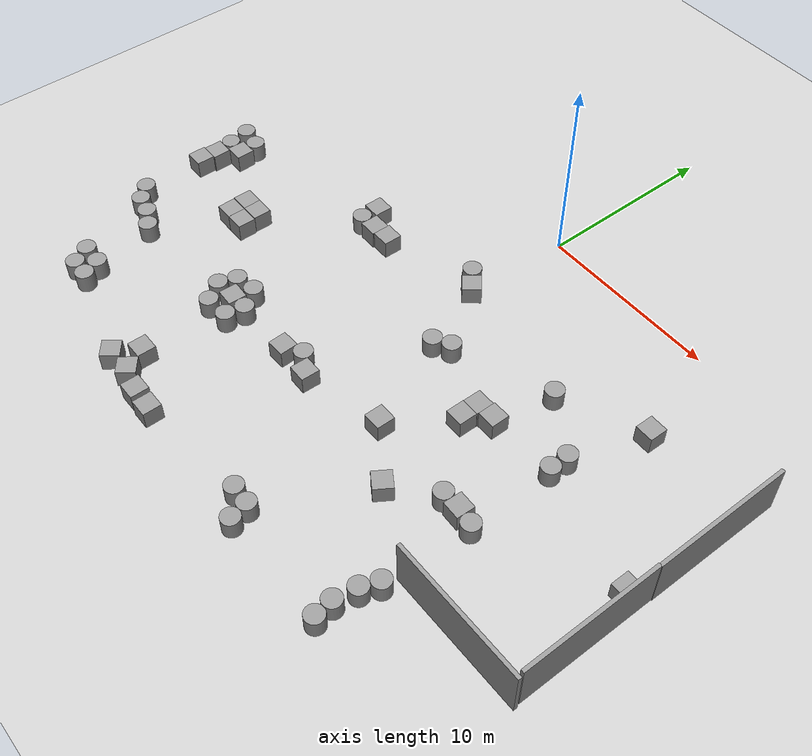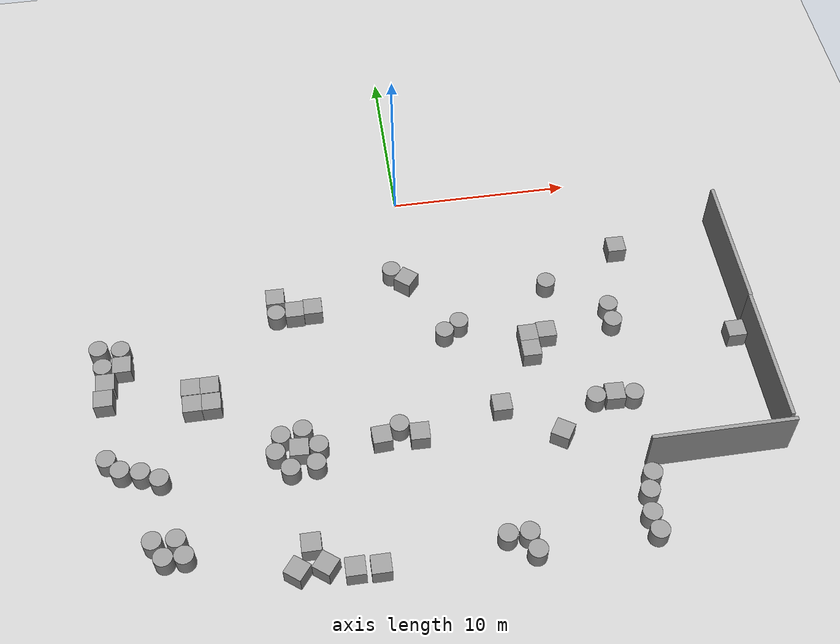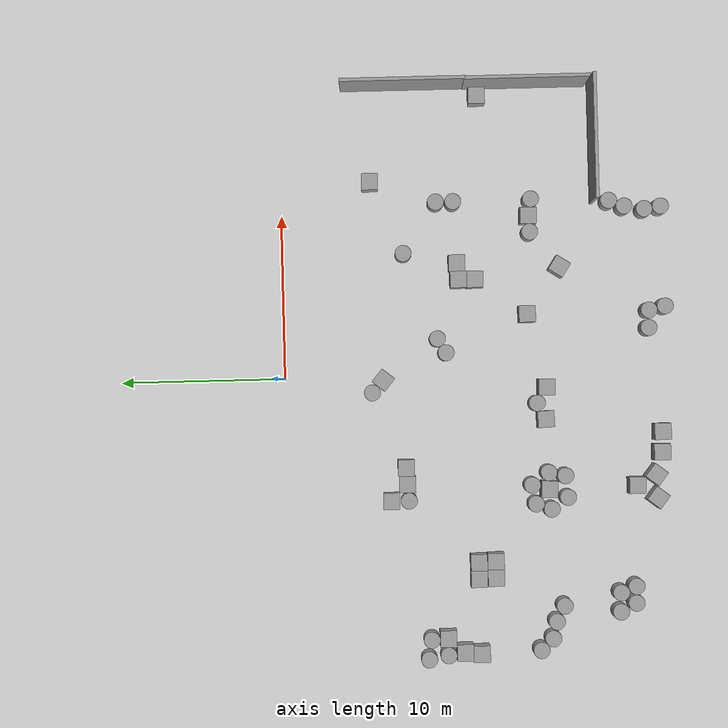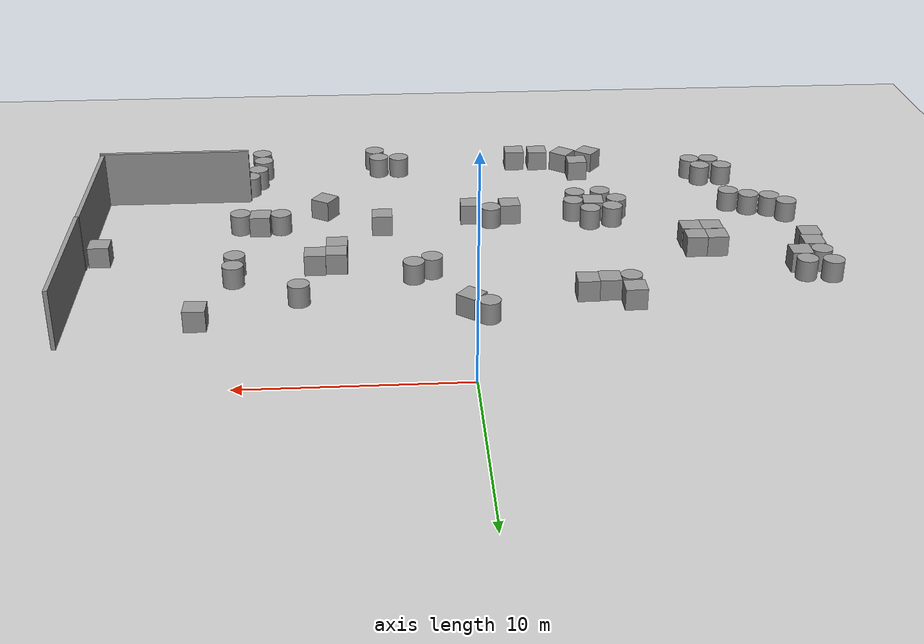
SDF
<sdf version="1.6">
 <world name="default">
  <model name="ground_plane">
   <static>1</static>
   <link name="link">
    <collision name="collision">
     <geometry><plane><normal>0 0 1</normal><size>100 100</size></plane></geometry>
     <surface><friction><ode><mu>100</mu><mu2>50</mu2></ode></friction></surface>
    </collision>
    <visual name="visual">
     <cast_shadows>0</cast_shadows>
     <geometry><plane><normal>0 0 1</normal><size>100 100</size></plane></geometry>
     <material>
      <script><uri>file://media/materials/scripts/gazebo.material</uri><name>Gazebo/Grey</name></script>
     </material>
    </visual>
   </link>
  </model>
  <model name="unit_box_5">
   <pose>-6.51998 -7.31504 0.5 0 0 -0.011529</pose>
   <link name="link">
    <inertial>
     <mass>1</mass>
     <inertia>
      <ixx>0.166667</ixx>
      <ixy>0</ixy>
      <ixz>0</ixz>
      <iyy>0.166667</iyy>
      <iyz>0</iyz>
      <izz>0.166667</izz>
     </inertia>
    </inertial>
    <collision name="collision"><geometry><box><size>1 1 1</size></box></geometry></collision>
    <visual name="visual">
     <geometry><box><size>1 1 1</size></box></geometry>
     <material>
      <script><name>Gazebo/Grey</name><uri>file://media/materials/scripts/gazebo.material</uri></script>
     </material>
    </visual>
   </link>
  </model>
  <model name="unit_cylinder_1">
   <pose>10.5673 -10.4506 0.499942 0 0 -0.000248</pose>
   <link name="link">
    <inertial>
     <mass>1</mass>
     <inertia><ixx>0.145833</ixx><ixy>0</ixy><ixz>0</ixz><iyy>0.145833</iyy><iyz>0</iyz><izz>0.125</izz></inertia>
    </inertial>
    <collision name="collision">
     <geometry><cylinder><radius>0.5</radius><length>1</length></cylinder></geometry>
    </collision>
    <visual name="visual">
     <geometry><cylinder><radius>0.5</radius><length>1</length></cylinder></geometry>
     <material>
      <script><name>Gazebo/Grey</name><uri>file://media/materials/scripts/gazebo.material</uri></script>
     </material>
    </visual>
   </link>
  </model>
  <model name="unit_cylinder_2">
   <pose>10.5614 -9.39908 0.499942 0 0 -0.000915</pose>
   <link name="link">
    <inertial>
     <mass>1</mass>
     <inertia><ixx>0.145833</ixx><ixy>0</ixy><ixz>0</ixz><iyy>0.145833</iyy><iyz>0</iyz><izz>0.125</izz></inertia>
    </inertial>
    <collision name="collision">
     <geometry><cylinder><radius>0.5</radius><length>1</length></cylinder></geometry>
    </collision>
    <visual name="visual">
     <geometry><cylinder><radius>0.5</radius><length>1</length></cylinder></geometry>
     <material>
      <script><name>Gazebo/Grey</name><uri>file://media/materials/scripts/gazebo.material</uri></script>
     </material>
    </visual>
   </link>
  </model>
  <model name="unit_cylinder_7">
   <pose>1.40059 -9.83483 0.499942 0 -0 3.6e-05</pose>
   <link name="link">
    <inertial>
     <mass>1</mass>
     <inertia><ixx>0.145833</ixx><ixy>0</ixy><ixz>0</ixz><iyy>0.145833</iyy><iyz>0</iyz><izz>0.125</izz></inertia>
    </inertial>
    <collision name="collision">
     <geometry><cylinder><radius>0.5</radius><length>1</length></cylinder></geometry>
    </collision>
    <visual name="visual">
     <geometry><cylinder><radius>0.5</radius><length>1</length></cylinder></geometry>
     <material>
      <script><name>Gazebo/Grey</name><uri>file://media/materials/scripts/gazebo.material</uri></script>
     </material>
    </visual>
   </link>
  </model>
  <model name="unit_box_10">
   <pose>6.83779 -10.6025 0.5 0 -0 1.5e-05</pose>
   <link name="link">
    <inertial>
     <mass>1</mass>
     <inertia>
      <ixx>0.166667</ixx>
      <ixy>0</ixy>
      <ixz>0</ixz>
      <iyy>0.166667</iyy>
      <iyz>0</iyz>
      <izz>0.166667</izz>
     </inertia>
    </inertial>
    <collision name="collision"><geometry><box><size>1 1 1</size></box></geometry></collision>
    <visual name="visual">
     <geometry><box><size>1 1 1</size></box></geometry>
     <material>
      <script><name>Gazebo/Grey</name><uri>file://media/materials/scripts/gazebo.material</uri></script>
     </material>
    </visual>
   </link>
  </model>
  <model name="unit_box_11">
   <pose>5.82223 -11.6823 0.499964 7.2e-05 0 -2.5e-05</pose>
   <link name="link">
    <inertial>
     <mass>1</mass>
     <inertia>
      <ixx>0.166667</ixx>
      <ixy>0</ixy>
      <ixz>0</ixz>
      <iyy>0.166667</iyy>
      <iyz>0</iyz>
      <izz>0.166667</izz>
     </inertia>
    </inertial>
    <collision name="collision"><geometry><box><size>1 1 1</size></box></geometry></collision>
    <visual name="visual">
     <geometry><box><size>1 1 1</size></box></geometry>
     <material>
      <script><name>Gazebo/Grey</name><uri>file://media/materials/scripts/gazebo.material</uri></script>
     </material>
    </visual>
   </link>
  </model>
  <model name="unit_box_14">
   <pose>5.83775 -10.6823 0.499964 -7.3e-05 0 -2.8e-05</pose>
   <link name="link">
    <inertial>
     <mass>1</mass>
     <inertia>
      <ixx>0.166667</ixx>
      <ixy>0</ixy>
      <ixz>0</ixz>
      <iyy>0.166667</iyy>
      <iyz>0</iyz>
      <izz>0.166667</izz>
     </inertia>
    </inertial>
    <collision name="collision"><geometry><box><size>1 1 1</size></box></geometry></collision>
    <visual name="visual">
     <geometry><box><size>1 1 1</size></box></geometry>
     <material>
      <script><name>Gazebo/Grey</name><uri>file://media/materials/scripts/gazebo.material</uri></script>
     </material>
    </visual>
   </link>
  </model>
  <model name="unit_box_26">
   <pose>3.65039 -14.8069 0.5 0 -0 0</pose>
   <link name="link">
    <inertial>
     <mass>1</mass>
     <inertia>
      <ixx>0.166667</ixx>
      <ixy>0</ixy>
      <ixz>0</ixz>
      <iyy>0.166667</iyy>
      <iyz>0</iyz>
      <izz>0.166667</izz>
     </inertia>
    </inertial>
    <collision name="collision"><geometry><box><size>1 1 1</size></box></geometry></collision>
    <visual name="visual">
     <geometry><box><size>1 1 1</size></box></geometry>
     <material>
      <script><name>Gazebo/Grey</name><uri>file://media/materials/scripts/gazebo.material</uri></script>
     </material>
    </visual>
   </link>
  </model>
  <model name="unit_cylinder_15">
   <pose>-1.77956 -15.2792 0.499942 0 0 -0.00561</pose>
   <link name="link">
    <inertial>
     <mass>1</mass>
     <inertia><ixx>0.145833</ixx><ixy>0</ixy><ixz>0</ixz><iyy>0.145833</iyy><iyz>0</iyz><izz>0.125</izz></inertia>
    </inertial>
    <collision name="collision">
     <geometry><cylinder><radius>0.5</radius><length>1</length></cylinder></geometry>
    </collision>
    <visual name="visual">
     <geometry><cylinder><radius>0.5</radius><length>1</length></cylinder></geometry>
     <material>
      <script><name>Gazebo/Grey</name><uri>file://media/materials/scripts/gazebo.material</uri></script>
     </material>
    </visual>
   </link>
  </model>
  <model name="unit_box_27">
   <pose>-7.00414 -15.9171 0.5 0 0 -0.05005</pose>
   <link name="link">
    <inertial>
     <mass>1</mass>
     <inertia>
      <ixx>0.166667</ixx>
      <ixy>0</ixy>
      <ixz>0</ixz>
      <iyy>0.166667</iyy>
      <iyz>0</iyz>
      <izz>0.166667</izz>
     </inertia>
    </inertial>
    <collision name="collision"><geometry><box><size>1 1 1</size></box></geometry></collision>
    <visual name="visual">
     <geometry><box><size>1 1 1</size></box></geometry>
     <material>
      <script><name>Gazebo/Grey</name><uri>file://media/materials/scripts/gazebo.material</uri></script>
     </material>
    </visual>
   </link>
  </model>
  <model name="unit_box_28_0">
   <pose>-16.7585 -10.5798 0.5 0 0 -0.00305</pose>
   <link name="link">
    <inertial>
     <mass>1</mass>
     <inertia>
      <ixx>0.166667</ixx>
      <ixy>0</ixy>
      <ixz>0</ixz>
      <iyy>0.166667</iyy>
      <iyz>0</iyz>
      <izz>0.166667</izz>
     </inertia>
    </inertial>
    <collision name="collision"><geometry><box><size>1 1 1</size></box></geometry></collision>
    <visual name="visual">
     <geometry><box><size>1 1 1</size></box></geometry>
     <material>
      <script><name>Gazebo/Grey</name><uri>file://media/materials/scripts/gazebo.material</uri></script>
     </material>
    </visual>
   </link>
  </model>
  <model name="unit_box_28_1">
   <pose>-16.8635 -11.5795 0.5 0 0 -0.003058</pose>
   <link name="link">
    <inertial>
     <mass>1</mass>
     <inertia>
      <ixx>0.166667</ixx>
      <ixy>0</ixy>
      <ixz>0</ixz>
      <iyy>0.166667</iyy>
      <iyz>0</iyz>
      <izz>0.166667</izz>
     </inertia>
    </inertial>
    <collision name="collision"><geometry><box><size>1 1 1</size></box></geometry></collision>
    <visual name="visual">
     <geometry><box><size>1 1 1</size></box></geometry>
     <material>
      <script><name>Gazebo/Grey</name><uri>file://media/materials/scripts/gazebo.material</uri></script>
     </material>
    </visual>
   </link>
  </model>
  <model name="unit_cylinder_27">
   <pose>-16.0304 -15.9217 0.499942 0 0 -4.4e-05</pose>
   <link name="link">
    <inertial>
     <mass>1</mass>
     <inertia><ixx>0.145833</ixx><ixy>0</ixy><ixz>0</ixz><iyy>0.145833</iyy><iyz>0</iyz><izz>0.125</izz></inertia>
    </inertial>
    <collision name="collision">
     <geometry><cylinder><radius>0.5</radius><length>1</length></cylinder></geometry>
    </collision>
    <visual name="visual">
     <geometry><cylinder><radius>0.5</radius><length>1</length></cylinder></geometry>
     <material>
      <script><name>Gazebo/Grey</name><uri>file://media/materials/scripts/gazebo.material</uri></script>
     </material>
    </visual>
   </link>
  </model>
  <model name="unit_cylinder_28">
   <pose>-15.0122 -16.1585 0.499942 0 -0 0</pose>
   <link name="link">
    <inertial>
     <mass>1</mass>
     <inertia><ixx>0.145833</ixx><ixy>0</ixy><ixz>0</ixz><iyy>0.145833</iyy><iyz>0</iyz><izz>0.125</izz></inertia>
    </inertial>
    <collision name="collision">
     <geometry><cylinder><radius>0.5</radius><length>1</length></cylinder></geometry>
    </collision>
    <visual name="visual">
     <geometry><cylinder><radius>0.5</radius><length>1</length></cylinder></geometry>
     <material>
      <script><name>Gazebo/Grey</name><uri>file://media/materials/scripts/gazebo.material</uri></script>
     </material>
    </visual>
   </link>
  </model>
  <model name="unit_cylinder_29">
   <pose>-14.0775 -16.6533 0.499942 0 -0 0</pose>
   <link name="link">
    <inertial>
     <mass>1</mass>
     <inertia><ixx>0.145833</ixx><ixy>0</ixy><ixz>0</ixz><iyy>0.145833</iyy><iyz>0</iyz><izz>0.125</izz></inertia>
    </inertial>
    <collision name="collision">
     <geometry><cylinder><radius>0.5</radius><length>1</length></cylinder></geometry>
    </collision>
    <visual name="visual">
     <geometry><cylinder><radius>0.5</radius><length>1</length></cylinder></geometry>
     <material>
      <script><name>Gazebo/Grey</name><uri>file://media/materials/scripts/gazebo.material</uri></script>
     </material>
    </visual>
   </link>
  </model>
  <model name="unit_box_28">
   <pose>-15.8992 -9.57782 0.5 0 -0 0.005949</pose>
   <link name="link">
    <inertial>
     <mass>1</mass>
     <inertia>
      <ixx>0.166667</ixx>
      <ixy>0</ixy>
      <ixz>0</ixz>
      <iyy>0.166667</iyy>
      <iyz>0</iyz>
      <izz>0.166667</izz>
     </inertia>
    </inertial>
    <collision name="collision"><geometry><box><size>1 1 1</size></box></geometry></collision>
    <visual name="visual">
     <geometry><box><size>1 1 1</size></box></geometry>
     <material>
      <script><name>Gazebo/Grey</name><uri>file://media/materials/scripts/gazebo.material</uri></script>
     </material>
    </visual>
   </link>
  </model>
  <model name="unit_cylinder_40">
   <pose>8.62202 -15.0706 0.499942 0 0 -0.007938</pose>
   <link name="link">
    <inertial>
     <mass>1</mass>
     <inertia><ixx>0.145833</ixx><ixy>0</ixy><ixz>0</ixz><iyy>0.145833</iyy><iyz>0</iyz><izz>0.125</izz></inertia>
    </inertial>
    <collision name="collision">
     <geometry><cylinder><radius>0.5</radius><length>1</length></cylinder></geometry>
    </collision>
    <visual name="visual">
     <geometry><cylinder><radius>0.5</radius><length>1</length></cylinder></geometry>
     <material>
      <script><name>Gazebo/Grey</name><uri>file://media/materials/scripts/gazebo.material</uri></script>
     </material>
    </visual>
   </link>
  </model>
  <model name="unit_box_45">
   <pose>9.62543 -15.0067 0.5 0 0 -0.038841</pose>
   <link name="link">
    <inertial>
     <mass>1</mass>
     <inertia>
      <ixx>0.166667</ixx>
      <ixy>0</ixy>
      <ixz>0</ixz>
      <iyy>0.166667</iyy>
      <iyz>0</iyz>
      <izz>0.166667</izz>
     </inertia>
    </inertial>
    <collision name="collision"><geometry><box><size>1 1 1</size></box></geometry></collision>
    <visual name="visual">
     <geometry><box><size>1 1 1</size></box></geometry>
     <material>
      <script><name>Gazebo/Grey</name><uri>file://media/materials/scripts/gazebo.material</uri></script>
     </material>
    </visual>
   </link>
  </model>
  <model name="unit_cylinder_41">
   <pose>10.6198 -15.1733 0.499942 0 -0 0.015652</pose>
   <link name="link">
    <inertial>
     <mass>1</mass>
     <inertia><ixx>0.145833</ixx><ixy>0</ixy><ixz>0</ixz><iyy>0.145833</iyy><iyz>0</iyz><izz>0.125</izz></inertia>
    </inertial>
    <collision name="collision">
     <geometry><cylinder><radius>0.5</radius><length>1</length></cylinder></geometry>
    </collision>
    <visual name="visual">
     <geometry><cylinder><radius>0.5</radius><length>1</length></cylinder></geometry>
     <material>
      <script><name>Gazebo/Grey</name><uri>file://media/materials/scripts/gazebo.material</uri></script>
     </material>
    </visual>
   </link>
  </model>
  <model name="unit_cylinder_21">
   <pose>2.2636 -9.32963 0.499942 0 0 -0.000265</pose>
   <link name="link">
    <inertial>
     <mass>1</mass>
     <inertia><ixx>0.145833</ixx><ixy>0</ixy><ixz>0</ixz><iyy>0.145833</iyy><iyz>0</iyz><izz>0.125</izz></inertia>
    </inertial>
    <collision name="collision">
     <geometry><cylinder><radius>0.5</radius><length>1</length></cylinder></geometry>
    </collision>
    <visual name="visual">
     <geometry><cylinder><radius>0.5</radius><length>1</length></cylinder></geometry>
     <material>
      <script><name>Gazebo/Grey</name><uri>file://media/materials/scripts/gazebo.material</uri></script>
     </material>
    </visual>
   </link>
  </model>
  <model name="unit_box_0_1">
   <pose>-5.51922 -7.25579 0.5 0 0 -0.011531</pose>
   <link name="link">
    <inertial>
     <mass>1</mass>
     <inertia>
      <ixx>0.166667</ixx>
      <ixy>0</ixy>
      <ixz>0</ixz>
      <iyy>0.166667</iyy>
      <iyz>0</iyz>
      <izz>0.166667</izz>
     </inertia>
    </inertial>
    <collision name="collision"><geometry><box><size>1 1 1</size></box></geometry></collision>
    <visual name="visual">
     <geometry><box><size>1 1 1</size></box></geometry>
     <material>
      <script><name>Gazebo/Grey</name><uri>file://media/materials/scripts/gazebo.material</uri></script>
     </material>
    </visual>
   </link>
  </model>
  <model name="unit_box_0_3">
   <pose>-7.51431 -6.33074 0.5 0 0 -0.01033</pose>
   <link name="link">
    <inertial>
     <mass>1</mass>
     <inertia>
      <ixx>0.166667</ixx>
      <ixy>0</ixy>
      <ixz>0</ixz>
      <iyy>0.166667</iyy>
      <iyz>0</iyz>
      <izz>0.166667</izz>
     </inertia>
    </inertial>
    <collision name="collision"><geometry><box><size>1 1 1</size></box></geometry></collision>
    <visual name="visual">
     <geometry><box><size>1 1 1</size></box></geometry>
     <material>
      <script><name>Gazebo/Grey</name><uri>file://media/materials/scripts/gazebo.material</uri></script>
     </material>
    </visual>
   </link>
  </model>
  <model name="unit_box_6">
   <pose>6.49356 -16.8377 0.5 0 -0 1</pose>
   <link name="link">
    <inertial>
     <mass>1</mass>
     <inertia>
      <ixx>0.166667</ixx>
      <ixy>0</ixy>
      <ixz>0</ixz>
      <iyy>0.166667</iyy>
      <iyz>0</iyz>
      <izz>0.166667</izz>
     </inertia>
    </inertial>
    <collision name="collision"><geometry><box><size>1 1 1</size></box></geometry></collision>
    <visual name="visual">
     <geometry><box><size>1 1 1</size></box></geometry>
     <material>
      <script><name>Gazebo/Grey</name><uri>file://media/materials/scripts/gazebo.material</uri></script>
     </material>
    </visual>
   </link>
  </model>
  <model name="unit_box_18">
   <pose>-0.174864 -5.99582 0.5 0 -0 0.888889</pose>
   <link name="link">
    <inertial>
     <mass>1</mass>
     <inertia>
      <ixx>0.166667</ixx>
      <ixy>0</ixy>
      <ixz>0</ixz>
      <iyy>0.166667</iyy>
      <iyz>0</iyz>
      <izz>0.166667</izz>
     </inertia>
    </inertial>
    <collision name="collision"><geometry><box><size>1 1 1</size></box></geometry></collision>
    <visual name="visual">
     <geometry><box><size>1 1 1</size></box></geometry>
     <material>
      <script><name>Gazebo/Grey</name><uri>file://media/materials/scripts/gazebo.material</uri></script>
     </material>
    </visual>
   </link>
  </model>
  <model name="unit_cylinder_5_1">
   <pose>-0.924336 -5.31924 0.499942 0 -0 0.036522</pose>
   <link name="link">
    <inertial>
     <mass>1</mass>
     <inertia><ixx>0.145833</ixx><ixy>0</ixy><ixz>0</ixz><iyy>0.145833</iyy><iyz>0</iyz><izz>0.125</izz></inertia>
    </inertial>
    <collision name="collision">
     <geometry><cylinder><radius>0.5</radius><length>1</length></cylinder></geometry>
    </collision>
    <visual name="visual">
     <geometry><cylinder><radius>0.5</radius><length>1</length></cylinder></geometry>
     <material>
      <script><name>Gazebo/Grey</name><uri>file://media/materials/scripts/gazebo.material</uri></script>
     </material>
    </visual>
   </link>
  </model>
  <model name="unit_cylinder_5">
   <pose>-16.7148 -15.1926 0.499942 0 0 -0.000128</pose>
   <link name="link">
    <inertial>
     <mass>1</mass>
     <inertia><ixx>0.145833</ixx><ixy>0</ixy><ixz>0</ixz><iyy>0.145833</iyy><iyz>0</iyz><izz>0.125</izz></inertia>
    </inertial>
    <collision name="collision">
     <geometry><cylinder><radius>0.5</radius><length>1</length></cylinder></geometry>
    </collision>
    <visual name="visual">
     <geometry><cylinder><radius>0.5</radius><length>1</length></cylinder></geometry>
     <material>
      <script><name>Gazebo/Grey</name><uri>file://media/materials/scripts/gazebo.material</uri></script>
     </material>
    </visual>
   </link>
  </model>
  <model name="unit_box_38">
   <pose>-2.75738 -15.7936 0.5 0 -0 0.045263</pose>
   <link name="link">
    <inertial>
     <mass>1</mass>
     <inertia>
      <ixx>0.166667</ixx>
      <ixy>0</ixy>
      <ixz>0</ixz>
      <iyy>0.166667</iyy>
      <iyz>0</iyz>
      <izz>0.166667</izz>
     </inertia>
    </inertial>
    <collision name="collision"><geometry><box><size>1 1 1</size></box></geometry></collision>
    <visual name="visual">
     <geometry><box><size>1 1 1</size></box></geometry>
     <material>
      <script><name>Gazebo/Grey</name><uri>file://media/materials/scripts/gazebo.material</uri></script>
     </material>
    </visual>
   </link>
  </model>
  <model name="unit_box_39">
   <pose>-0.800238 -15.8834 0.5 0 0 -0.025349</pose>
   <link name="link">
    <inertial>
     <mass>1</mass>
     <inertia>
      <ixx>0.166667</ixx>
      <ixy>0</ixy>
      <ixz>0</ixz>
      <iyy>0.166667</iyy>
      <iyz>0</iyz>
      <izz>0.166667</izz>
     </inertia>
    </inertial>
    <collision name="collision"><geometry><box><size>1 1 1</size></box></geometry></collision>
    <visual name="visual">
     <geometry><box><size>1 1 1</size></box></geometry>
     <material>
      <script><name>Gazebo/Grey</name><uri>file://media/materials/scripts/gazebo.material</uri></script>
     </material>
    </visual>
   </link>
  </model>
  <model name="grey_wall_1_clone_clone">
   <static>1</static>
   <link name="link">
    <pose>0 0 1.4 0 -0 0</pose>
    <collision name="collision"><geometry><box><size>7.5 0.2 2.8</size></box></geometry></collision>
    <visual name="visual">
     <cast_shadows>0</cast_shadows>
     <geometry><box><size>7.5 0.2 2.8</size></box></geometry>
     <material>
      <script>
       <uri>model://grey_wall/materials/scripts</uri>
       <uri>model://grey_wall/materials/textures</uri>
       <name>vrc/grey_wall</name>
      </script>
     </material>
    </visual>
   </link>
   <pose>17.6884 -14.9541 0 0 -0 1.5714</pose>
  </model>
  <model name="grey_wall_1_clone_clone_0">
   <static>1</static>
   <link name="link">
    <pose>0 0 1.4 0 -0 0</pose>
    <collision name="collision"><geometry><box><size>7.5 0.2 2.8</size></box></geometry></collision>
    <visual name="visual">
     <cast_shadows>0</cast_shadows>
     <geometry><box><size>7.5 0.2 2.8</size></box></geometry>
     <material>
      <script>
       <uri>model://grey_wall/materials/scripts</uri>
       <uri>model://grey_wall/materials/textures</uri>
       <name>vrc/grey_wall</name>
      </script>
     </material>
    </visual>
   </link>
   <pose>17.717 -7.49778 0 0 -0 1.5714</pose>
  </model>
  <model name="grey_wall_0_clone_0_clone_1_clone">
   <static>1</static>
   <link name="link">
    <pose>0 0 1.4 0 -0 0</pose>
    <collision name="collision"><geometry><box><size>7.5 0.2 2.8</size></box></geometry></collision>
    <visual name="visual">
     <cast_shadows>0</cast_shadows>
     <geometry><box><size>7.5 0.2 2.8</size></box></geometry>
     <material>
      <script>
       <uri>model://grey_wall/materials/scripts</uri>
       <uri>model://grey_wall/materials/textures</uri>
       <name>vrc/grey_wall</name>
      </script>
     </material>
    </visual>
   </link>
   <pose>14.1169 -18.9602 0 0 -0 0</pose>
  </model>
  <model name="unit_box_7">
   <pose>-6.88935 -21.2406 0.5 0 -0 0</pose>
   <link name="link">
    <inertial>
     <mass>1</mass>
     <inertia>
      <ixx>0.166667</ixx>
      <ixy>0</ixy>
      <ixz>0</ixz>
      <iyy>0.166667</iyy>
      <iyz>0</iyz>
      <izz>0.166667</izz>
     </inertia>
    </inertial>
    <collision name="collision"><geometry><box><size>1 1 1</size></box></geometry></collision>
    <visual name="visual">
     <geometry><box><size>1 1 1</size></box></geometry>
     <material>
      <script><name>Gazebo/Grey</name><uri>file://media/materials/scripts/gazebo.material</uri></script>
     </material>
    </visual>
   </link>
  </model>
  <model name="unit_box_18_clone_clone_clone_2">
   <pose>-6.27432 -22.4299 0.5 0 -0 0.912679</pose>
   <link name="link">
    <inertial>
     <mass>1</mass>
     <inertia>
      <ixx>0.166667</ixx>
      <ixy>0</ixy>
      <ixz>0</ixz>
      <iyy>0.166667</iyy>
      <iyz>0</iyz>
      <izz>0.166667</izz>
     </inertia>
    </inertial>
    <collision name="collision"><geometry><box><size>1 1 1</size></box></geometry></collision>
    <visual name="visual">
     <geometry><box><size>1 1 1</size></box></geometry>
     <material>
      <script><name>Gazebo/Grey</name><uri>file://media/materials/scripts/gazebo.material</uri></script>
     </material>
    </visual>
   </link>
  </model>
  <model name="unit_box_18_clone_clone_clone_3">
   <pose>-7.6635 -22.5055 0.5 0 -0 0.912679</pose>
   <link name="link">
    <inertial>
     <mass>1</mass>
     <inertia>
      <ixx>0.166667</ixx>
      <ixy>0</ixy>
      <ixz>0</ixz>
      <iyy>0.166667</iyy>
      <iyz>0</iyz>
      <izz>0.166667</izz>
     </inertia>
    </inertial>
    <collision name="collision"><geometry><box><size>1 1 1</size></box></geometry></collision>
    <visual name="visual">
     <geometry><box><size>1 1 1</size></box></geometry>
     <material>
      <script><name>Gazebo/Grey</name><uri>file://media/materials/scripts/gazebo.material</uri></script>
     </material>
    </visual>
   </link>
  </model>
  <model name="unit_box_7_clone">
   <pose>-4.90285 -22.7898 0.5 0 -0 0</pose>
   <link name="link">
    <inertial>
     <mass>1</mass>
     <inertia>
      <ixx>0.166667</ixx>
      <ixy>0</ixy>
      <ixz>0</ixz>
      <iyy>0.166667</iyy>
      <iyz>0</iyz>
      <izz>0.166667</izz>
     </inertia>
    </inertial>
    <collision name="collision"><geometry><box><size>1 1 1</size></box></geometry></collision>
    <visual name="visual">
     <geometry><box><size>1 1 1</size></box></geometry>
     <material>
      <script><name>Gazebo/Grey</name><uri>file://media/materials/scripts/gazebo.material</uri></script>
     </material>
    </visual>
   </link>
  </model>
  <model name="unit_box_7_clone_0">
   <pose>-3.66505 -22.8519 0.5 0 -0 0</pose>
   <link name="link">
    <inertial>
     <mass>1</mass>
     <inertia>
      <ixx>0.166667</ixx>
      <ixy>0</ixy>
      <ixz>0</ixz>
      <iyy>0.166667</iyy>
      <iyz>0</iyz>
      <izz>0.166667</izz>
     </inertia>
    </inertial>
    <collision name="collision"><geometry><box><size>1 1 1</size></box></geometry></collision>
    <visual name="visual">
     <geometry><box><size>1 1 1</size></box></geometry>
     <material>
      <script><name>Gazebo/Grey</name><uri>file://media/materials/scripts/gazebo.material</uri></script>
     </material>
    </visual>
   </link>
  </model>
  <model name="unit_cylinder_15_clone">
   <pose>2.64126 -22.1574 0.499942 0 0 -0.00561</pose>
   <link name="link">
    <inertial>
     <mass>1</mass>
     <inertia><ixx>0.145833</ixx><ixy>0</ixy><ixz>0</ixz><iyy>0.145833</iyy><iyz>0</iyz><izz>0.125</izz></inertia>
    </inertial>
    <collision name="collision">
     <geometry><cylinder><radius>0.5</radius><length>1</length></cylinder></geometry>
    </collision>
    <visual name="visual">
     <geometry><cylinder><radius>0.5</radius><length>1</length></cylinder></geometry>
     <material>
      <script><name>Gazebo/Grey</name><uri>file://media/materials/scripts/gazebo.material</uri></script>
     </material>
    </visual>
   </link>
  </model>
  <model name="unit_cylinder_15_clone_0">
   <pose>3.9295 -23.1761 0.499942 0 0 -0.005157</pose>
   <link name="link">
    <inertial>
     <mass>1</mass>
     <inertia><ixx>0.145833</ixx><ixy>0</ixy><ixz>0</ixz><iyy>0.145833</iyy><iyz>0</iyz><izz>0.125</izz></inertia>
    </inertial>
    <collision name="collision">
     <geometry><cylinder><radius>0.5</radius><length>1</length></cylinder></geometry>
    </collision>
    <visual name="visual">
     <geometry><cylinder><radius>0.5</radius><length>1</length></cylinder></geometry>
     <material>
      <script><name>Gazebo/Grey</name><uri>file://media/materials/scripts/gazebo.material</uri></script>
     </material>
    </visual>
   </link>
  </model>
  <model name="unit_cylinder_15_clone_1">
   <pose>3.71085 -22.2002 0.499942 0 0 -0.008738</pose>
   <link name="link">
    <inertial>
     <mass>1</mass>
     <inertia><ixx>0.145833</ixx><ixy>0</ixy><ixz>0</ixz><iyy>0.145833</iyy><iyz>0</iyz><izz>0.125</izz></inertia>
    </inertial>
    <collision name="collision">
     <geometry><cylinder><radius>0.5</radius><length>1</length></cylinder></geometry>
    </collision>
    <visual name="visual">
     <geometry><cylinder><radius>0.5</radius><length>1</length></cylinder></geometry>
     <material>
      <script><name>Gazebo/Grey</name><uri>file://media/materials/scripts/gazebo.material</uri></script>
     </material>
    </visual>
   </link>
  </model>
  <model name="unit_cylinder_15_clone_2">
   <pose>-13.3555 -20.0912 0.499942 0 0 -0.006458</pose>
   <link name="link">
    <inertial>
     <mass>1</mass>
     <inertia><ixx>0.145833</ixx><ixy>0</ixy><ixz>0</ixz><iyy>0.145833</iyy><iyz>0</iyz><izz>0.125</izz></inertia>
    </inertial>
    <collision name="collision">
     <geometry><cylinder><radius>0.5</radius><length>1</length></cylinder></geometry>
    </collision>
    <visual name="visual">
     <geometry><cylinder><radius>0.5</radius><length>1</length></cylinder></geometry>
     <material>
      <script><name>Gazebo/Grey</name><uri>file://media/materials/scripts/gazebo.material</uri></script>
     </material>
    </visual>
   </link>
  </model>
  <model name="unit_cylinder_15_clone_3">
   <pose>-12.9917 -21.0228 0.499942 0 0 -0.005428</pose>
   <link name="link">
    <inertial>
     <mass>1</mass>
     <inertia><ixx>0.145833</ixx><ixy>0</ixy><ixz>0</ixz><iyy>0.145833</iyy><iyz>0</iyz><izz>0.125</izz></inertia>
    </inertial>
    <collision name="collision">
     <geometry><cylinder><radius>0.5</radius><length>1</length></cylinder></geometry>
    </collision>
    <visual name="visual">
     <geometry><cylinder><radius>0.5</radius><length>1</length></cylinder></geometry>
     <material>
      <script><name>Gazebo/Grey</name><uri>file://media/materials/scripts/gazebo.material</uri></script>
     </material>
    </visual>
   </link>
  </model>
  <model name="unit_cylinder_15_clone_4">
   <pose>-14 -21 0.499942 0 0 -0.00561</pose>
   <link name="link">
    <inertial>
     <mass>1</mass>
     <inertia><ixx>0.145833</ixx><ixy>0</ixy><ixz>0</ixz><iyy>0.145833</iyy><iyz>0</iyz><izz>0.125</izz></inertia>
    </inertial>
    <collision name="collision">
     <geometry><cylinder><radius>0.5</radius><length>1</length></cylinder></geometry>
    </collision>
    <visual name="visual">
     <geometry><cylinder><radius>0.5</radius><length>1</length></cylinder></geometry>
     <material>
      <script><name>Gazebo/Grey</name><uri>file://media/materials/scripts/gazebo.material</uri></script>
     </material>
    </visual>
   </link>
  </model>
  <model name="unit_cylinder_15_clone_5">
   <pose>-14.5138 -20.0546 0.499942 0 0 -0.00561</pose>
   <link name="link">
    <inertial>
     <mass>1</mass>
     <inertia><ixx>0.145833</ixx><ixy>0</ixy><ixz>0</ixz><iyy>0.145833</iyy><iyz>0</iyz><izz>0.125</izz></inertia>
    </inertial>
    <collision name="collision">
     <geometry><cylinder><radius>0.5</radius><length>1</length></cylinder></geometry>
    </collision>
    <visual name="visual">
     <geometry><cylinder><radius>0.5</radius><length>1</length></cylinder></geometry>
     <material>
      <script><name>Gazebo/Grey</name><uri>file://media/materials/scripts/gazebo.material</uri></script>
     </material>
    </visual>
   </link>
  </model>
  <model name="unit_cylinder_15_clone_6">
   <pose>10.064 -20.8307 0.499942 0 0 -0.005027</pose>
   <link name="link">
    <inertial>
     <mass>1</mass>
     <inertia><ixx>0.145833</ixx><ixy>0</ixy><ixz>0</ixz><iyy>0.145833</iyy><iyz>0</iyz><izz>0.125</izz></inertia>
    </inertial>
    <collision name="collision">
     <geometry><cylinder><radius>0.5</radius><length>1</length></cylinder></geometry>
    </collision>
    <visual name="visual">
     <geometry><cylinder><radius>0.5</radius><length>1</length></cylinder></geometry>
     <material>
      <script><name>Gazebo/Grey</name><uri>file://media/materials/scripts/gazebo.material</uri></script>
     </material>
    </visual>
   </link>
  </model>
  <model name="unit_cylinder_15_clone_7">
   <pose>10.4248 -19.898 0.499942 0 0 -0.004343</pose>
   <link name="link">
    <inertial>
     <mass>1</mass>
     <inertia><ixx>0.145833</ixx><ixy>0</ixy><ixz>0</ixz><iyy>0.145833</iyy><iyz>0</iyz><izz>0.125</izz></inertia>
    </inertial>
    <collision name="collision">
     <geometry><cylinder><radius>0.5</radius><length>1</length></cylinder></geometry>
    </collision>
    <visual name="visual">
     <geometry><cylinder><radius>0.5</radius><length>1</length></cylinder></geometry>
     <material>
      <script><name>Gazebo/Grey</name><uri>file://media/materials/scripts/gazebo.material</uri></script>
     </material>
    </visual>
   </link>
  </model>
  <model name="unit_cylinder_15_clone_8">
   <pose>9.8653 -22.0485 0.499942 0 0 -0.007395</pose>
   <link name="link">
    <inertial>
     <mass>1</mass>
     <inertia><ixx>0.145833</ixx><ixy>0</ixy><ixz>0</ixz><iyy>0.145833</iyy><iyz>0</iyz><izz>0.125</izz></inertia>
    </inertial>
    <collision name="collision">
     <geometry><cylinder><radius>0.5</radius><length>1</length></cylinder></geometry>
    </collision>
    <visual name="visual">
     <geometry><cylinder><radius>0.5</radius><length>1</length></cylinder></geometry>
     <material>
      <script><name>Gazebo/Grey</name><uri>file://media/materials/scripts/gazebo.material</uri></script>
     </material>
    </visual>
   </link>
  </model>
  <model name="unit_cylinder_15_clone_9">
   <pose>10.004 -23.0389 0.499942 0 0 -0.005111</pose>
   <link name="link">
    <inertial>
     <mass>1</mass>
     <inertia><ixx>0.145833</ixx><ixy>0</ixy><ixz>0</ixz><iyy>0.145833</iyy><iyz>0</iyz><izz>0.125</izz></inertia>
    </inertial>
    <collision name="collision">
     <geometry><cylinder><radius>0.5</radius><length>1</length></cylinder></geometry>
    </collision>
    <visual name="visual">
     <geometry><cylinder><radius>0.5</radius><length>1</length></cylinder></geometry>
     <material>
      <script><name>Gazebo/Grey</name><uri>file://media/materials/scripts/gazebo.material</uri></script>
     </material>
    </visual>
   </link>
  </model>
  <model name="unit_box_25_3">
   <pose>11.8973 -5.43261 0.5 0 0 -0.011591</pose>
   <link name="link">
    <inertial>
     <mass>1</mass>
     <inertia>
      <ixx>0.166667</ixx>
      <ixy>0</ixy>
      <ixz>0</ixz>
      <iyy>0.166667</iyy>
      <iyz>0</iyz>
      <izz>0.166667</izz>
     </inertia>
    </inertial>
    <collision name="collision"><geometry><box><size>1 1 1</size></box></geometry></collision>
    <visual name="visual">
     <geometry><box><size>1 1 1</size></box></geometry>
     <material>
      <script><name>Gazebo/Grey</name><uri>file://media/materials/scripts/gazebo.material</uri></script>
     </material>
    </visual>
   </link>
  </model>
  <model name="unit_cylinder_46">
   <pose>7.48508 -7.36377 0.499942 0 -0 0</pose>
   <link name="link">
    <inertial>
     <mass>1</mass>
     <inertia><ixx>0.145833</ixx><ixy>0</ixy><ixz>0</ixz><iyy>0.145833</iyy><iyz>0</iyz><izz>0.125</izz></inertia>
    </inertial>
    <collision name="collision">
     <geometry><cylinder><radius>0.5</radius><length>1</length></cylinder></geometry>
    </collision>
    <visual name="visual">
     <geometry><cylinder><radius>0.5</radius><length>1</length></cylinder></geometry>
     <material>
      <script><name>Gazebo/Grey</name><uri>file://media/materials/scripts/gazebo.material</uri></script>
     </material>
    </visual>
   </link>
  </model>
  <model name="unit_box_51">
   <pose>17.0087 -12.0375 0.5 0 -0 0</pose>
   <link name="link">
    <inertial>
     <mass>1</mass>
     <inertia>
      <ixx>0.166667</ixx>
      <ixy>0</ixy>
      <ixz>0</ixz>
      <iyy>0.166667</iyy>
      <iyz>0</iyz>
      <izz>0.166667</izz>
     </inertia>
    </inertial>
    <collision name="collision"><geometry><box><size>1 1 1</size></box></geometry></collision>
    <visual name="visual">
     <geometry><box><size>1 1 1</size></box></geometry>
     <material>
      <script><name>Gazebo/Grey</name><uri>file://media/materials/scripts/gazebo.material</uri></script>
     </material>
    </visual>
   </link>
  </model>
  <model name="unit_cylinder_14">
   <pose>-8.21157 -16.0198 0.499942 0 -0 0.068621</pose>
   <link name="link">
    <inertial>
     <mass>1</mass>
     <inertia><ixx>0.145833</ixx><ixy>0</ixy><ixz>0</ixz><iyy>0.145833</iyy><iyz>0</iyz><izz>0.125</izz></inertia>
    </inertial>
    <collision name="collision">
     <geometry><cylinder><radius>0.5</radius><length>1</length></cylinder></geometry>
    </collision>
    <visual name="visual">
     <geometry><cylinder><radius>0.5</radius><length>1</length></cylinder></geometry>
     <material>
      <script><name>Gazebo/Grey</name><uri>file://media/materials/scripts/gazebo.material</uri></script>
     </material>
    </visual>
   </link>
  </model>
  <model name="unit_cylinder_48">
   <pose>-7.87163 -15.0779 0.499942 0 -0 0.03491</pose>
   <link name="link">
    <inertial>
     <mass>1</mass>
     <inertia><ixx>0.145833</ixx><ixy>0</ixy><ixz>0</ixz><iyy>0.145833</iyy><iyz>0</iyz><izz>0.125</izz></inertia>
    </inertial>
    <collision name="collision">
     <geometry><cylinder><radius>0.5</radius><length>1</length></cylinder></geometry>
    </collision>
    <visual name="visual">
     <geometry><cylinder><radius>0.5</radius><length>1</length></cylinder></geometry>
     <material>
      <script><name>Gazebo/Grey</name><uri>file://media/materials/scripts/gazebo.material</uri></script>
     </material>
    </visual>
   </link>
  </model>
  <model name="unit_cylinder_49">
   <pose>-7.52219 -17.0207 0.499942 0 -0 0</pose>
   <link name="link">
    <inertial>
     <mass>1</mass>
     <inertia><ixx>0.145833</ixx><ixy>0</ixy><ixz>0</ixz><iyy>0.145833</iyy><iyz>0</iyz><izz>0.125</izz></inertia>
    </inertial>
    <collision name="collision">
     <geometry><cylinder><radius>0.5</radius><length>1</length></cylinder></geometry>
    </collision>
    <visual name="visual">
     <geometry><cylinder><radius>0.5</radius><length>1</length></cylinder></geometry>
     <material>
      <script><name>Gazebo/Grey</name><uri>file://media/materials/scripts/gazebo.material</uri></script>
     </material>
    </visual>
   </link>
  </model>
  <model name="unit_cylinder_50">
   <pose>-6.21252 -16.8904 0.499942 0 -0 0</pose>
   <link name="link">
    <inertial>
     <mass>1</mass>
     <inertia><ixx>0.145833</ixx><ixy>0</ixy><ixz>0</ixz><iyy>0.145833</iyy><iyz>0</iyz><izz>0.125</izz></inertia>
    </inertial>
    <collision name="collision">
     <geometry><cylinder><radius>0.5</radius><length>1</length></cylinder></geometry>
    </collision>
    <visual name="visual">
     <geometry><cylinder><radius>0.5</radius><length>1</length></cylinder></geometry>
     <material>
      <script><name>Gazebo/Grey</name><uri>file://media/materials/scripts/gazebo.material</uri></script>
     </material>
    </visual>
   </link>
  </model>
  <model name="unit_cylinder_51">
   <pose>-5.9997 -15.8838 0.499942 0 -0 0</pose>
   <link name="link">
    <inertial>
     <mass>1</mass>
     <inertia><ixx>0.145833</ixx><ixy>0</ixy><ixz>0</ixz><iyy>0.145833</iyy><iyz>0</iyz><izz>0.125</izz></inertia>
    </inertial>
    <collision name="collision">
     <geometry><cylinder><radius>0.5</radius><length>1</length></cylinder></geometry>
    </collision>
    <visual name="visual">
     <geometry><cylinder><radius>0.5</radius><length>1</length></cylinder></geometry>
     <material>
      <script><name>Gazebo/Grey</name><uri>file://media/materials/scripts/gazebo.material</uri></script>
     </material>
    </visual>
   </link>
  </model>
  <model name="unit_cylinder_52">
   <pose>-6.7346 -14.8653 0.499942 0 -0 0</pose>
   <link name="link">
    <inertial>
     <mass>1</mass>
     <inertia><ixx>0.145833</ixx><ixy>0</ixy><ixz>0</ixz><iyy>0.145833</iyy><iyz>0</iyz><izz>0.125</izz></inertia>
    </inertial>
    <collision name="collision">
     <geometry><cylinder><radius>0.5</radius><length>1</length></cylinder></geometry>
    </collision>
    <visual name="visual">
     <geometry><cylinder><radius>0.5</radius><length>1</length></cylinder></geometry>
     <material>
      <script><name>Gazebo/Grey</name><uri>file://media/materials/scripts/gazebo.material</uri></script>
     </material>
    </visual>
   </link>
  </model>
  <model name="unit_box_19">
   <pose>-12.34 -11.5265 0.5 0 0 -0.000161</pose>
   <link name="link">
    <inertial>
     <mass>1</mass>
     <inertia>
      <ixx>0.166667</ixx>
      <ixy>0</ixy>
      <ixz>0</ixz>
      <iyy>0.166667</iyy>
      <iyz>0</iyz>
      <izz>0.166667</izz>
     </inertia>
    </inertial>
    <collision name="collision"><geometry><box><size>1 1 1</size></box></geometry></collision>
    <visual name="visual">
     <geometry><box><size>1 1 1</size></box></geometry>
     <material>
      <script><name>Gazebo/Grey</name><uri>file://media/materials/scripts/gazebo.material</uri></script>
     </material>
    </visual>
   </link>
  </model>
  <model name="unit_box_24_2">
   <pose>-11.34 -11.5357 0.5 0 0 -0.00016</pose>
   <link name="link">
    <inertial>
     <mass>1</mass>
     <inertia>
      <ixx>0.166667</ixx>
      <ixy>0</ixy>
      <ixz>0</ixz>
      <iyy>0.166667</iyy>
      <iyz>0</iyz>
      <izz>0.166667</izz>
     </inertia>
    </inertial>
    <collision name="collision"><geometry><box><size>1 1 1</size></box></geometry></collision>
    <visual name="visual">
     <geometry><box><size>1 1 1</size></box></geometry>
     <material>
      <script><name>Gazebo/Grey</name><uri>file://media/materials/scripts/gazebo.material</uri></script>
     </material>
    </visual>
   </link>
  </model>
  <model name="unit_box_24_3">
   <pose>-12.2939 -12.5466 0.5 0 0 -0.000556</pose>
   <link name="link">
    <inertial>
     <mass>1</mass>
     <inertia>
      <ixx>0.166667</ixx>
      <ixy>0</ixy>
      <ixz>0</ixz>
      <iyy>0.166667</iyy>
      <iyz>0</iyz>
      <izz>0.166667</izz>
     </inertia>
    </inertial>
    <collision name="collision"><geometry><box><size>1 1 1</size></box></geometry></collision>
    <visual name="visual">
     <geometry><box><size>1 1 1</size></box></geometry>
     <material>
      <script><name>Gazebo/Grey</name><uri>file://media/materials/scripts/gazebo.material</uri></script>
     </material>
    </visual>
   </link>
  </model>
  <model name="unit_box_24_4">
   <pose>-11.2938 -12.5561 0.5 0 0 -0.000538</pose>
   <link name="link">
    <inertial>
     <mass>1</mass>
     <inertia>
      <ixx>0.166667</ixx>
      <ixy>0</ixy>
      <ixz>0</ixz>
      <iyy>0.166667</iyy>
      <iyz>0</iyz>
      <izz>0.166667</izz>
     </inertia>
    </inertial>
    <collision name="collision"><geometry><box><size>1 1 1</size></box></geometry></collision>
    <visual name="visual">
     <geometry><box><size>1 1 1</size></box></geometry>
     <material>
      <script><name>Gazebo/Grey</name><uri>file://media/materials/scripts/gazebo.material</uri></script>
     </material>
    </visual>
   </link>
  </model>
  <model name="unit_cylinder_9">
   <pose>-16.9027 -9.57548 0.499942 0 0 -0.000213</pose>
   <link name="link">
    <inertial>
     <mass>1</mass>
     <inertia><ixx>0.145833</ixx><ixy>0</ixy><ixz>0</ixz><iyy>0.145833</iyy><iyz>0</iyz><izz>0.125</izz></inertia>
    </inertial>
    <collision name="collision">
     <geometry><cylinder><radius>0.5</radius><length>1</length></cylinder></geometry>
    </collision>
    <visual name="visual">
     <geometry><cylinder><radius>0.5</radius><length>1</length></cylinder></geometry>
     <material>
      <script><name>Gazebo/Grey</name><uri>file://media/materials/scripts/gazebo.material</uri></script>
     </material>
    </visual>
   </link>
  </model>
  <model name="unit_cylinder_16">
   <pose>-17.1253 -8.39722 0.499942 0 -0 0</pose>
   <link name="link">
    <inertial>
     <mass>1</mass>
     <inertia><ixx>0.145833</ixx><ixy>0</ixy><ixz>0</ixz><iyy>0.145833</iyy><iyz>0</iyz><izz>0.125</izz></inertia>
    </inertial>
    <collision name="collision">
     <geometry><cylinder><radius>0.5</radius><length>1</length></cylinder></geometry>
    </collision>
    <visual name="visual">
     <geometry><cylinder><radius>0.5</radius><length>1</length></cylinder></geometry>
     <material>
      <script><name>Gazebo/Grey</name><uri>file://media/materials/scripts/gazebo.material</uri></script>
     </material>
    </visual>
   </link>
  </model>
  <model name="unit_cylinder_17_0">
   <pose>-15.9469 -8.57806 0.499942 0 -0 0.002628</pose>
   <link name="link">
    <inertial>
     <mass>1</mass>
     <inertia><ixx>0.145833</ixx><ixy>0</ixy><ixz>0</ixz><iyy>0.145833</iyy><iyz>0</iyz><izz>0.125</izz></inertia>
    </inertial>
    <collision name="collision">
     <geometry><cylinder><radius>0.5</radius><length>1</length></cylinder></geometry>
    </collision>
    <visual name="visual">
     <geometry><cylinder><radius>0.5</radius><length>1</length></cylinder></geometry>
     <material>
      <script><name>Gazebo/Grey</name><uri>file://media/materials/scripts/gazebo.material</uri></script>
     </material>
    </visual>
   </link>
  </model>
  <model name="unit_cylinder_17_1">
   <pose>-7.52102 -7.39481 0.499942 0 0 -0.001848</pose>
   <link name="link">
    <inertial>
     <mass>1</mass>
     <inertia><ixx>0.145833</ixx><ixy>0</ixy><ixz>0</ixz><iyy>0.145833</iyy><iyz>0</iyz><izz>0.125</izz></inertia>
    </inertial>
    <collision name="collision">
     <geometry><cylinder><radius>0.5</radius><length>1</length></cylinder></geometry>
    </collision>
    <visual name="visual">
     <geometry><cylinder><radius>0.5</radius><length>1</length></cylinder></geometry>
     <material>
      <script><name>Gazebo/Grey</name><uri>file://media/materials/scripts/gazebo.material</uri></script>
     </material>
    </visual>
   </link>
  </model>
 </world>
</sdf>
